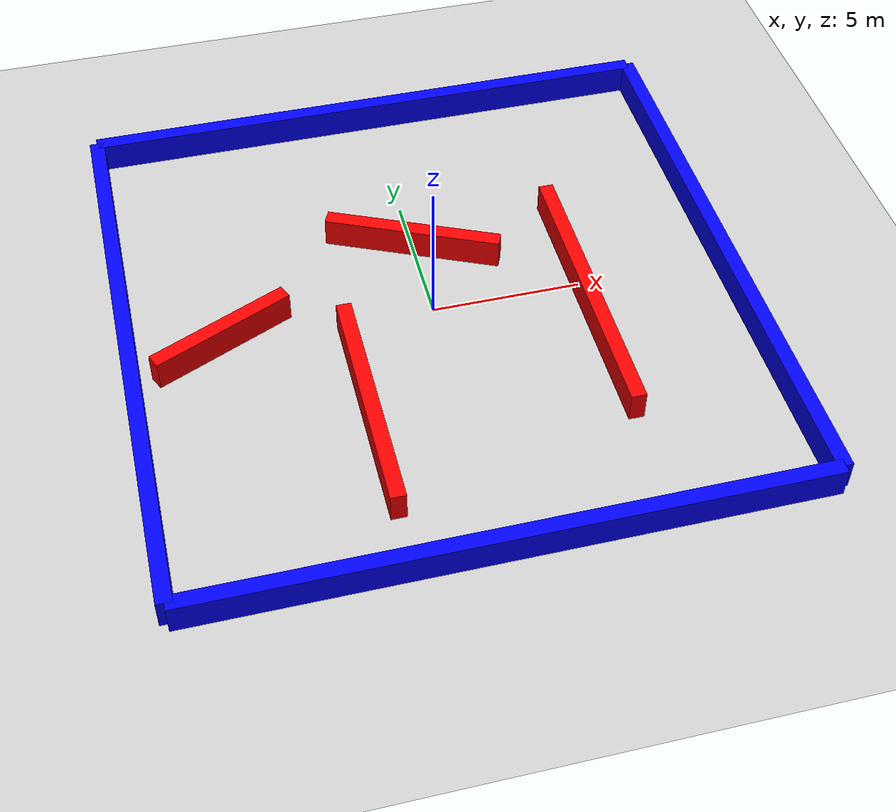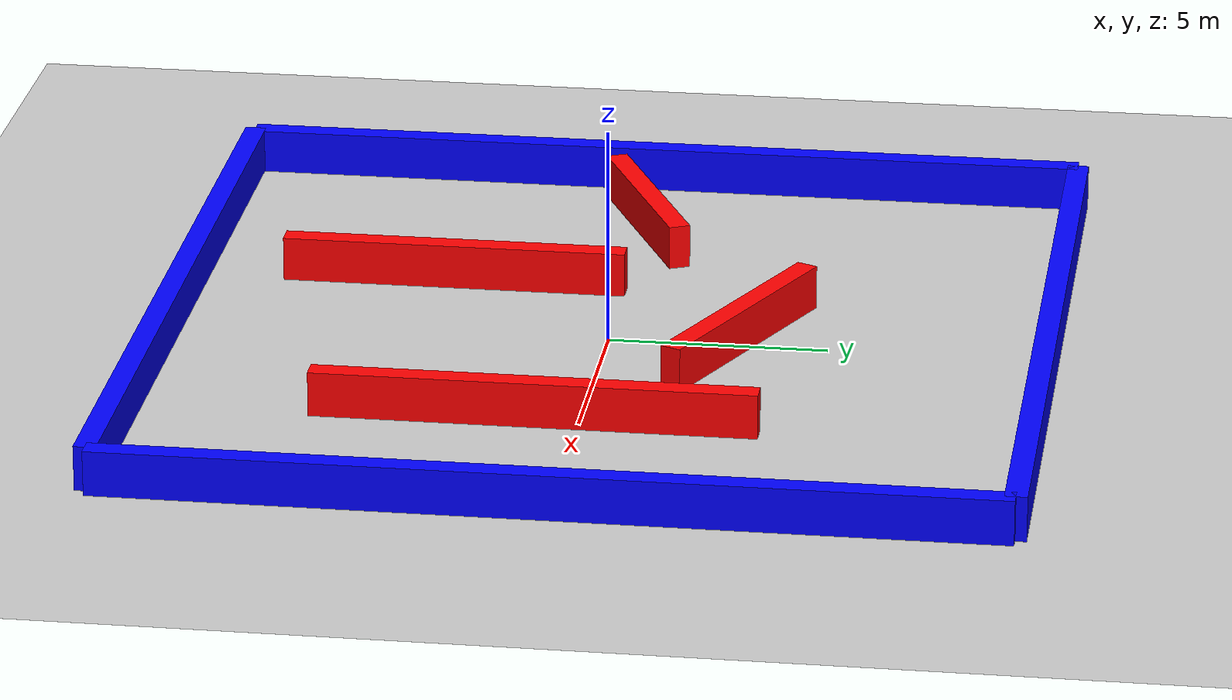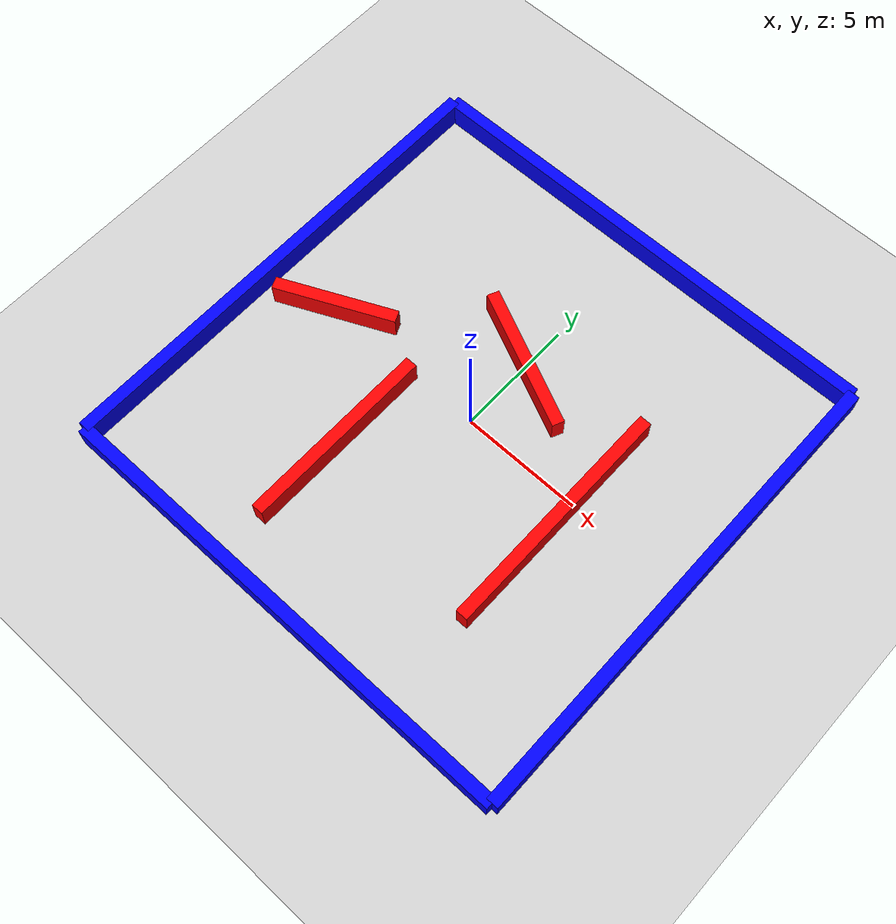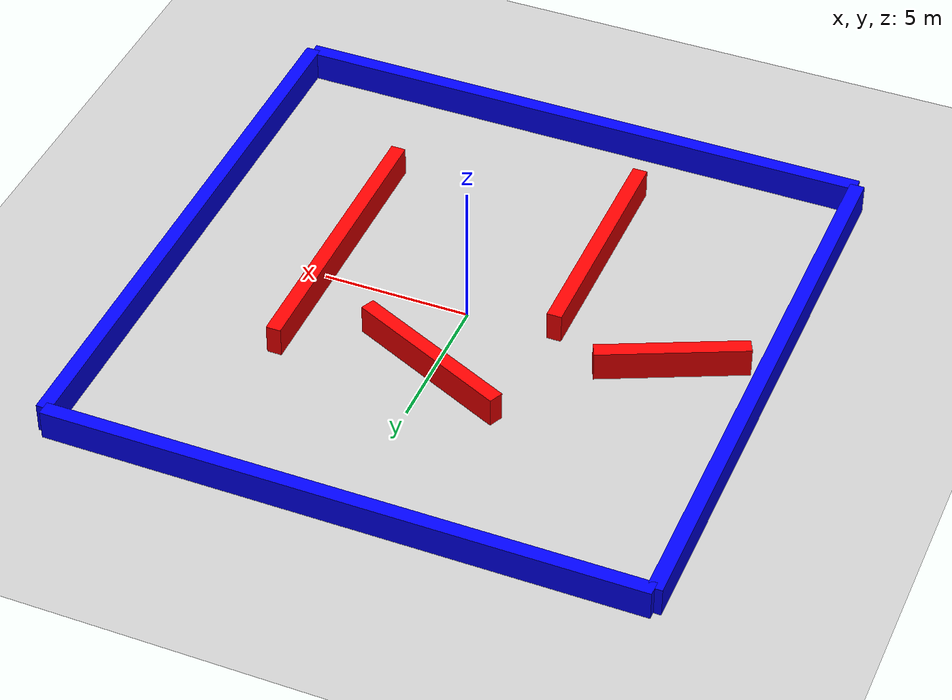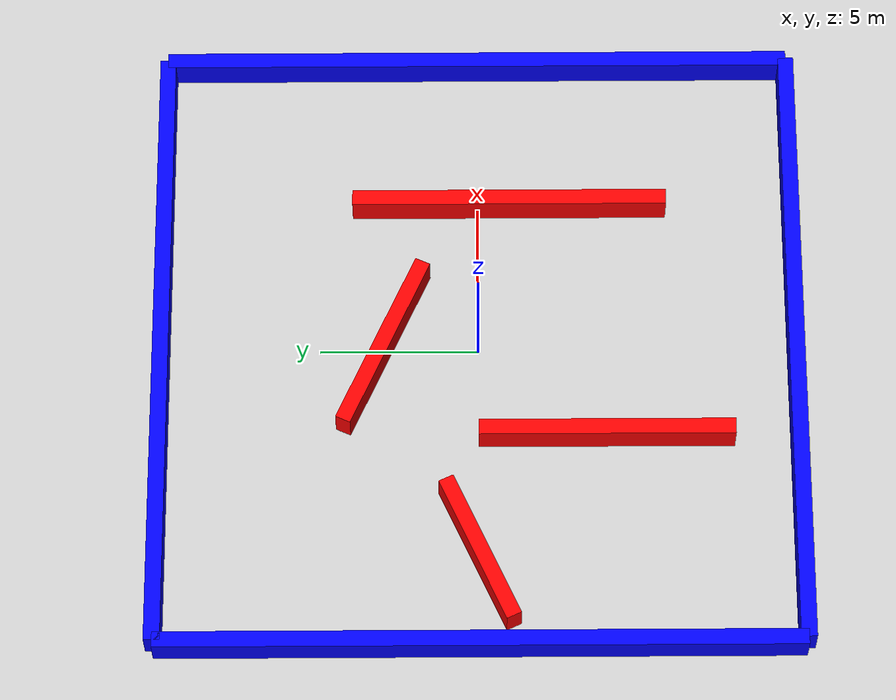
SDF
<sdf version="1.8">
 <world name="custom_world">
  <physics name="1ms" type="ignored">
   <max_step_size>0.001</max_step_size>
   <real_time_factor>1.0</real_time_factor>
  </physics>
  <plugin filename="ignition-gazebo-physics-system" name="ignition::gazebo::systems::Physics"/>
  <plugin filename="ignition-gazebo-user-commands-system" name="ignition::gazebo::systems::UserCommands"/>
  <plugin filename="ignition-gazebo-scene-broadcaster-system" name="ignition::gazebo::systems::SceneBroadcaster"/>
  <plugin filename="libignition-gazebo-imu-system.so" name="ignition::gazebo::systems::Imu"/>
  <plugin filename="libignition-gazebo-contact-system.so" name="ignition::gazebo::systems::Contact"/>
  <plugin filename="libignition-gazebo-sensors-system.so" name="ignition::gazebo::systems::Sensors">
   <render_engine>ogre2</render_engine>
  </plugin>
  <plugin name="ignition::gazebo::systems::UserCommands" filename="ignition-gazebo-user-commands-system"/>
  <light type="directional" name="sun">
   <pose>0 0 10 0 0 0</pose>
   <diffuse>0.8 0.8 0.8 1</diffuse>
   <specular>0.2 0.2 0.2 1</specular>
   <attenuation>
    <range>1000</range>
    <constant>0.9</constant>
    <linear>0.01</linear>
    <quadratic>0.001</quadratic>
   </attenuation>
   <direction>-0.5 0.1 -0.9</direction>
  </light>
  <model name="ground_plane">
   <static>true</static>
   <link name="link">
    <collision name="collision"><geometry><plane><normal>0 0 1</normal></plane></geometry></collision>
    <visual name="visual">
     <geometry><plane><normal>0 0 1</normal><size>100 100</size></plane></geometry>
     <material>
      <ambient>0.8 0.8 0.8 1</ambient>
      <diffuse>0.8 0.8 0.8 1</diffuse>
      <specular>0.8 0.8 0.8 1</specular>
     </material>
    </visual>
   </link>
  </model>
  <model name="wall01">
   <static>true</static>
   <plugin filename="ignition-gazebo-label-system" name="ignition::gazebo::systems::Label">
    <label>10</label>
   </plugin>
   <pose>10 0 0 0 0 0</pose>
   <link name="box">
    <visual name="visual">
     <geometry><box><size>0.5 20.0 2.0</size></box></geometry>
     <material>
      <ambient>0.0 0.0 1.0 1</ambient>
      <diffuse>0.0 0.0 1.0 1</diffuse>
      <specular>0.0 0.0 1.0 1</specular>
     </material>
    </visual>
    <collision name="collision"><geometry><box><size>0.5 20.0 2.0</size></box></geometry></collision>
    <sensor name="sensor_contact" type="contact"><contact><collision>collision</collision></contact></sensor>
   </link>
   <plugin filename="libignition-gazebo-touchplugin-system.so" name="ignition::gazebo::systems::TouchPlugin">
    <target>vehicle</target>
    <namespace>wall</namespace>
    <time>0.001</time>
    <enabled>true</enabled>
   </plugin>
  </model>
  <model name="wall02">
   <static>true</static>
   <plugin filename="ignition-gazebo-label-system" name="ignition::gazebo::systems::Label">
    <label>10</label>
   </plugin>
   <pose>-10 0 0 0 0 0</pose>
   <link name="box">
    <visual name="visual">
     <geometry><box><size>0.5 20 2.0</size></box></geometry>
     <material>
      <ambient>0.0 0.0 1.0 1</ambient>
      <diffuse>0.0 0.0 1.0 1</diffuse>
      <specular>0.0 0.0 1.0 1</specular>
     </material>
    </visual>
    <collision name="collision"><geometry><box><size>0.5 20 2.0</size></box></geometry></collision>
    <sensor name="sensor_contact" type="contact"><contact><collision>collision</collision></contact></sensor>
   </link>
   <plugin filename="libignition-gazebo-touchplugin-system.so" name="ignition::gazebo::systems::TouchPlugin">
    <target>vehicle</target>
    <namespace>wall</namespace>
    <time>0.001</time>
    <enabled>true</enabled>
   </plugin>
  </model>
  <model name="wall03">
   <static>true</static>
   <plugin filename="ignition-gazebo-label-system" name="ignition::gazebo::systems::Label">
    <label>10</label>
   </plugin>
   <pose>0 10 0 0 0 0</pose>
   <link name="box">
    <visual name="visual">
     <geometry><box><size>20 0.5 2.0</size></box></geometry>
     <material>
      <ambient>0.0 0.0 1.0 1</ambient>
      <diffuse>0.0 0.0 1.0 1</diffuse>
      <specular>0.0 0.0 1.0 1</specular>
     </material>
    </visual>
    <collision name="collision"><geometry><box><size>20 0.5 2.0</size></box></geometry></collision>
    <sensor name="sensor_contact" type="contact"><contact><collision>collision</collision></contact></sensor>
   </link>
   <plugin filename="libignition-gazebo-touchplugin-system.so" name="ignition::gazebo::systems::TouchPlugin">
    <target>vehicle</target>
    <namespace>wall</namespace>
    <time>0.001</time>
    <enabled>true</enabled>
   </plugin>
  </model>
  <model name="wall04">
   <static>true</static>
   <plugin filename="ignition-gazebo-label-system" name="ignition::gazebo::systems::Label">
    <label>10</label>
   </plugin>
   <pose>0 -10 0 0 0 0</pose>
   <link name="box">
    <visual name="visual">
     <geometry><box><size>20 0.5 2.0</size></box></geometry>
     <material>
      <ambient>0.0 0.0 1.0 1</ambient>
      <diffuse>0.0 0.0 1.0 1</diffuse>
      <specular>0.0 0.0 1.0 1</specular>
     </material>
    </visual>
    <collision name="collision"><geometry><box><size>20 0.5 2.0</size></box></geometry></collision>
    <sensor name="sensor_contact" type="contact"><contact><collision>collision</collision></contact></sensor>
   </link>
   <plugin filename="libignition-gazebo-touchplugin-system.so" name="ignition::gazebo::systems::TouchPlugin">
    <target>vehicle</target>
    <namespace>wall</namespace>
    <time>0.001</time>
    <enabled>true</enabled>
   </plugin>
  </model>
  <model name="obstacle01">
   <static>true</static>
   <plugin filename="ignition-gazebo-label-system" name="ignition::gazebo::systems::Label">
    <label>20</label>
   </plugin>
   <pose>0 3 0 0 0 -2</pose>
   <link name="box">
    <visual name="visual">
     <geometry><box><size>0.5 6 2.0</size></box></geometry>
     <material>
      <ambient>1.0 0.0 0.0 1</ambient>
      <diffuse>1.0 0.0 0.0 1</diffuse>
      <specular>1.0 0.0 0.0 1</specular>
     </material>
    </visual>
    <collision name="collision"><geometry><box><size>0.5 6 2.0</size></box></geometry></collision>
    <sensor name="sensor_contact" type="contact"><contact><collision>collision</collision></contact></sensor>
   </link>
   <plugin filename="libignition-gazebo-touchplugin-system.so" name="ignition::gazebo::systems::TouchPlugin">
    <target>vehicle</target>
    <namespace>obstacle</namespace>
    <time>0.001</time>
    <enabled>true</enabled>
   </plugin>
  </model>
  <model name="obstacle02">
   <static>true</static>
   <plugin filename="ignition-gazebo-label-system" name="ignition::gazebo::systems::Label">
    <label>20</label>
   </plugin>
   <pose>5 -1 0 0 0 0</pose>
   <link name="box">
    <visual name="visual">
     <geometry><box><size>0.5 10 2.0</size></box></geometry>
     <material>
      <ambient>1.0 0.0 0.0 1</ambient>
      <diffuse>1.0 0.0 0.0 1</diffuse>
      <specular>1.0 0.0 0.0 1</specular>
     </material>
    </visual>
    <collision name="collision"><geometry><box><size>0.5 10 2.0</size></box></geometry></collision>
    <sensor name="sensor_contact" type="contact"><contact><collision>collision</collision></contact></sensor>
   </link>
   <plugin filename="libignition-gazebo-touchplugin-system.so" name="ignition::gazebo::systems::TouchPlugin">
    <target>vehicle</target>
    <namespace>obstacle</namespace>
    <time>0.001</time>
    <enabled>true</enabled>
   </plugin>
  </model>
  <model name="obstacle03">
   <static>true</static>
   <plugin filename="ignition-gazebo-label-system" name="ignition::gazebo::systems::Label">
    <label>20</label>
   </plugin>
   <pose>-3 -4 0 0 0 0</pose>
   <link name="box">
    <visual name="visual">
     <geometry><box><size>0.5 8 2.0</size></box></geometry>
     <material>
      <ambient>1.0 0.0 0.0 1</ambient>
      <diffuse>1.0 0.0 0.0 1</diffuse>
      <specular>1.0 0.0 0.0 1</specular>
     </material>
    </visual>
    <collision name="collision"><geometry><box><size>0.5 8 2.0</size></box></geometry></collision>
    <sensor name="sensor_contact" type="contact"><contact><collision>collision</collision></contact></sensor>
   </link>
   <plugin filename="libignition-gazebo-touchplugin-system.so" name="ignition::gazebo::systems::TouchPlugin">
    <target>vehicle</target>
    <namespace>obstacle</namespace>
    <time>0.001</time>
    <enabled>true</enabled>
   </plugin>
  </model>
  <model name="obstacle04">
   <static>true</static>
   <plugin filename="ignition-gazebo-label-system" name="ignition::gazebo::systems::Label">
    <label>20</label>
   </plugin>
   <pose>-7 0 0 0 0 2</pose>
   <link name="box">
    <visual name="visual">
     <geometry><box><size>0.5 5 2.0</size></box></geometry>
     <material>
      <ambient>1.0 0.0 0.0 1</ambient>
      <diffuse>1.0 0.0 0.0 1</diffuse>
      <specular>1.0 0.0 0.0 1</specular>
     </material>
    </visual>
    <collision name="collision"><geometry><box><size>0.5 5 2.0</size></box></geometry></collision>
    <sensor name="sensor_contact" type="contact"><contact><collision>collision</collision></contact></sensor>
   </link>
   <plugin filename="libignition-gazebo-touchplugin-system.so" name="ignition::gazebo::systems::TouchPlugin">
    <target>vehicle</target>
    <namespace>obstacle</namespace>
    <time>0.001</time>
    <enabled>true</enabled>
   </plugin>
  </model>
 </world>
</sdf>
